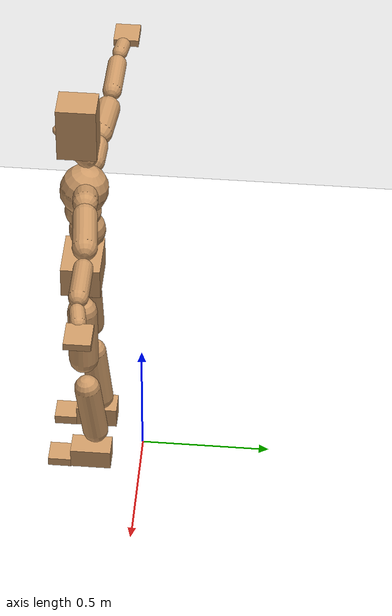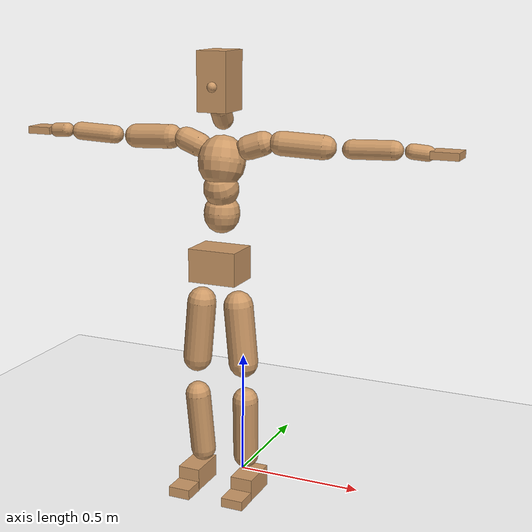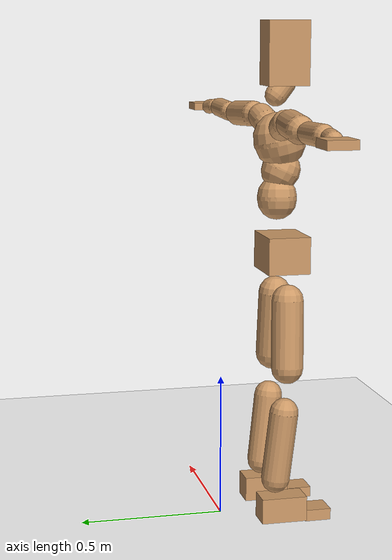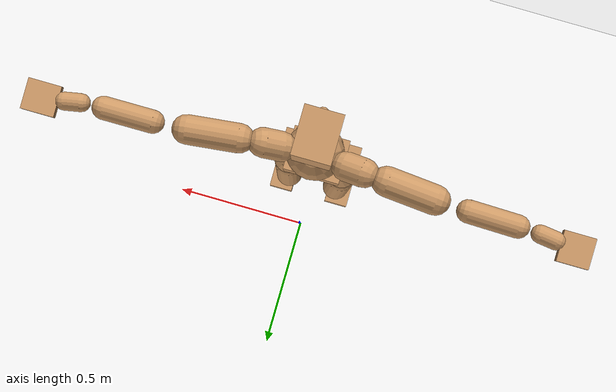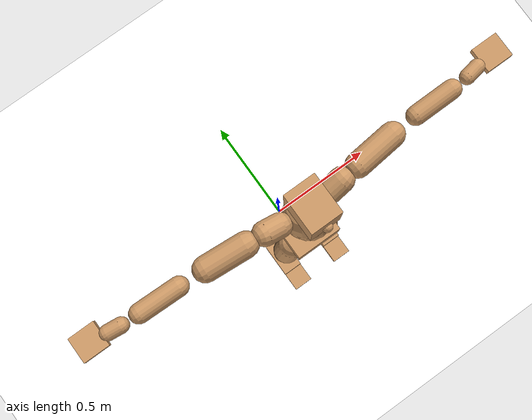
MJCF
<mujoco model="humanoid">
  <option integrator="implicitfast" />

  <visual>
    <global offwidth="1280" offheight="960" />
    <headlight active="1" ambient="0.34 0.34 0.34" diffuse="0.5 0.5 0.5" />
  </visual>

  <default>
    <joint damping="2" stiffness="2" armature="0.01" limited="true" solimplimit="0 .99 .01" />
    <geom condim="1" friction="0.7 0.005 0.0001" solimp=".99 .99 .003" solref="0.015 1" margin="0.001" rgba="0.8 0.6 .4 1" />
    <default class="smplcontact">
      <geom condim="3" friction="1. 0.005 0.0001" solref="0.015 1" solimp="0.98 0.98 0.001" priority="1" />
    </default>
    <default class="stiff_medium">
      <joint stiffness="10" />
    </default>
    <default class="stiff_medium_higher">
      <joint stiffness="50" />
    </default>
    <default class="stiff_high">
      <joint stiffness="100" />
    </default>
  </default>

  <asset>
    <texture type="skybox" builtin="gradient" rgb1="0.99 0.99 0.99" rgb2="0.608 0.828 0.892" width="100" />
    <texture builtin="flat" height="1278" mark="cross" markrgb="1 1 1" name="texgeom" random="0.01" rgb1="0.8 0.6 0.4" rgb2="0.8 0.6 0.4" type="cube" width="127" />
    <texture name="texplane" type="2d" builtin="checker" markrgb="1 1 1" rgb1="0.756 0.772 0.76" rgb2="0.6 0.6 0.6" width="100" height="100" />
    <material name="MatPlane" reflectance="0.5" texture="texplane" texrepeat="1 1" texuniform="true" />
    <material name="geom" texture="texgeom" texuniform="true" />
  </asset>

  <worldbody>
    <light name="tracking_light" pos="0 0 7" dir="0 0 -1" directional="true" cutoff="100" exponent="1" diffuse="1 1 1" specular="0.1 0.1 0.1" mode="trackcom" />
    <camera name="back" pos="0 3 2.4" xyaxes="-1 0 0 0 -1 2" mode="trackcom" />
    <camera name="side" pos="-3 0 2.4" xyaxes="0 -1 0 1 0 2" mode="trackcom" />
    <camera name="front_side" pos="-2.8 -2.8 0.8" xyaxes="0.5 -0.5 0 0.1 0.1 1" mode="trackcom" />
    <geom condim="3" name="floor" pos="0 0 0" rgba="1 1 1 1" size="100 100 .2" type="plane" material="MatPlane" />
    <body name="Pelvis" pos="-0.0018 -0.2233 0.949016" euler="90 0 0">
      <site name="Pelvis" size="0.01" />
      <freejoint name="Pelvis" />
      <geom type="box" pos="-0.0000 -0.0121 -0.0055" size="0.0952823 0.0643534 0.0739797" quat="1.0000 0.0000 0.0000 0.0000" density="3165.830099" name="Pelvis" />
      <body name="L_Hip" pos="0.0705565 -0.0927894 -0.00690337">
        <joint name="L_Hip_x" type="hinge" pos="0 0 0" axis="1 0 0" stiffness="10" range="-160.0 22.92" class="stiff_medium" damping="15" />
        <joint name="L_Hip_y" type="hinge" pos="0 0 0" axis="0 1 0" stiffness="10" range="-70.0 70.0" class="stiff_medium" damping="10" />
        <joint name="L_Hip_z" type="hinge" pos="0 0 0" axis="0 0 1" stiffness="10" range="-28.65 90.0" class="stiff_medium" damping="10" />
        <geom type="capsule" density="2040.816327" fromto="0.00700489 -0.0761401 -0.000913681 0.0278165 -0.304763 -0.00365472" size="0.0569593" name="L_Hip" />
        <body name="L_Knee" pos="0.0348214 -0.380904 -0.00456841">
          <joint name="L_Knee_x" type="hinge" pos="0 0 0" axis="1 0 0" range="-5.16 171.89" damping="8" />
          <joint name="L_Knee_y" type="hinge" pos="0 0 0" axis="0 1 0" range="-4.58 6.88" damping="8" />
          <joint name="L_Knee_z" type="hinge" pos="0 0 0" axis="0 0 1" range="-6.88 4.58" damping="8" />
          <geom type="capsule" density="1234.567901" fromto="-0.00274104 -0.08081 -0.00883225 -0.0110657 -0.32324 -0.035532" size="0.0501057" name="L_Knee" />
          <body name="L_Ankle" pos="-0.0138067 -0.40405 -0.0443643">
            <joint name="L_Ankle_x" type="hinge" pos="0 0 0" axis="1 0 0" range="-45.84 45.84" class="stiff_medium" damping="6" />
            <joint name="L_Ankle_y" type="hinge" pos="0 0 0" axis="0 1 0" range="-74.48 22.92" class="stiff_medium" damping="3" />
            <joint name="L_Ankle_z" type="hinge" pos="0 0 0" axis="0 0 1" range="-4.58 4.58" class="stiff_medium" damping="6" />
            <geom type="box" pos="0.0236542 -0.0242633 0.0245679" size="0.0447339 0.0429742 0.0787242" quat="1.0000 0.0000 0.0000 0.0000" density="449.071558" name="L_Ankle" class="smplcontact" />
            <body name="L_Toe" pos="0.0268013 -0.0566482 0.121114">
              <joint name="L_Toe_x" type="hinge" pos="0 0 0" axis="1 0 0" range="-91.67 22.92" />
              <joint name="L_Toe_y" type="hinge" pos="0 0 0" axis="0 1 0" range="-4.58 4.58" />
              <joint name="L_Toe_z" type="hinge" pos="0 0 0" axis="0 0 1" range="-4.58 4.58" />
              <geom type="box" pos="-0.0030456 0.00558361 0.025177" size="0.0442708 0.0185234 0.0459379" quat="1.0000 0.0000 0.0000 0.0000" density="423.206892" name="L_Toe" class="smplcontact" />
            </body>
          </body>
        </body>
      </body>
      <body name="R_Hip" pos="-0.0687291 -0.0918757 -0.00436537">
        <joint name="R_Hip_x" type="hinge" pos="0 0 0" axis="1 0 0" stiffness="10" range="-160.0 22.92" class="stiff_medium" damping="15" />
        <joint name="R_Hip_y" type="hinge" pos="0 0 0" axis="0 1 0" stiffness="10" range="-70.0 70.0" class="stiff_medium" damping="10" />
        <joint name="R_Hip_z" type="hinge" pos="0 0 0" axis="0 0 1" stiffness="10" range="-90.0 28.65" class="stiff_medium" damping="10" />
        <geom type="capsule" density="2040.816327" fromto="-0.00781705 -0.0776629 -0.00182736 -0.0310652 -0.310753 -0.00720793" size="0.0561258" name="R_Hip" />
        <body name="R_Knee" pos="-0.0388822 -0.388416 -0.00903529">
          <joint name="R_Knee_x" type="hinge" pos="0 0 0" axis="1 0 0" range="-5.16 171.89" damping="8" />
          <joint name="R_Knee_y" type="hinge" pos="0 0 0" axis="0 1 0" range="-6.88 4.58" damping="8" />
          <joint name="R_Knee_z" type="hinge" pos="0 0 0" axis="0 0 1" range="-4.58 6.88" damping="8" />
          <geom type="capsule" density="1234.567901" fromto="0.00324864 -0.0809115 -0.00862921 0.0127915 -0.323545 -0.0343138" size="0.0501057" name="R_Knee" />
          <body name="R_Ankle" pos="0.0160402 -0.404456 -0.042943">
            <joint name="R_Ankle_x" type="hinge" pos="0 0 0" axis="1 0 0" range="-45.84 45.84" class="stiff_medium" damping="6" />
            <joint name="R_Ankle_y" type="hinge" pos="0 0 0" axis="0 1 0" range="-22.92 74.48" class="stiff_medium" damping="3" />
            <joint name="R_Ankle_z" type="hinge" pos="0 0 0" axis="0 0 1" range="-4.58 4.58" class="stiff_medium" damping="6" />
            <geom type="box" pos="-0.0215223 -0.0176645 0.0259892" size="0.0447339 0.0442708 0.0801135" quat="1.0000 0.0000 0.0000 0.0000" density="434.700981" name="R_Ankle" class="smplcontact" />
            <body name="R_Toe" pos="-0.0257861 -0.0488312 0.125174">
              <joint name="R_Toe_x" type="hinge" pos="0 0 0" axis="1 0 0" range="-91.67 22.92" />
              <joint name="R_Toe_y" type="hinge" pos="0 0 0" axis="0 1 0" range="-4.58 4.58" />
              <joint name="R_Toe_z" type="hinge" pos="0 0 0" axis="0 0 1" range="-4.58 4.58" />
              <geom type="box" pos="0.00426385 0.00456841 0.0230451" size="0.0443634 0.0200052 0.0456601" quat="1.0000 0.0000 0.0000 0.0000" density="407.384095" name="R_Toe" class="smplcontact" />
            </body>
          </body>
        </body>
      </body>
      <body name="Torso" pos="-0.002538 0.110657 -0.0271059">
        <joint name="Torso_x" type="hinge" pos="0 0 0" axis="1 0 0" range="-25.78 57.3" class="stiff_medium" damping="15" />
        <joint name="Torso_y" type="hinge" pos="0 0 0" axis="0 1 0" range="-57.3 57.3" class="stiff_high" damping="20" />
        <joint name="Torso_z" type="hinge" pos="0 0 0" axis="0 0 1" range="-34.38 34.38" class="stiff_high" damping="20" />
        <geom type="capsule" density="2040.816327" fromto="0.002538 0.0617242 0.000507601 0.0030456 0.0754295 0.000609121" size="0.0685426" name="Torso" />
        <body name="Spine" pos="0.00558361 0.137255 0.00111672">
          <joint name="Spine_x" type="hinge" pos="0 0 0" axis="1 0 0" stiffness="10" range="-25.78 57.3" class="stiff_medium" damping="15" />
          <joint name="Spine_y" type="hinge" pos="0 0 0" axis="0 1 0" stiffness="10" range="-57.3 57.3" class="stiff_high" damping="8" />
          <joint name="Spine_z" type="hinge" pos="0 0 0" axis="0 0 1" stiffness="20" range="-34.38 34.38" class="stiff_high" damping="12" />
          <geom type="capsule" density="2040.816327" fromto="0.000710641 0.0241618 0.0115733 0.000812161 0.0295424 0.0142128" size="0.0672948" name="Spine" />
          <body name="Chest" pos="0.0015228 0.0537042 0.0257861">
            <joint name="Chest_x" type="hinge" pos="0 0 0" axis="1 0 0" stiffness="10" range="-25.78 57.3" class="stiff_medium" damping="15" />
            <joint name="Chest_y" type="hinge" pos="0 0 0" axis="0 1 0" stiffness="10" range="-57.3 57.3" class="stiff_high" damping="8" />
            <joint name="Chest_z" type="hinge" pos="0 0 0" axis="0 0 1" stiffness="20" range="-34.38 34.38" class="stiff_high" damping="12" />
            <geom type="capsule" density="2040.816327" fromto="-0.000913681 0.0692367 -0.017563 -0.0010152 0.0845663 -0.0215223" size="0.0893104" name="Chest" />
            <body name="Neck" pos="-0.00284256 0.217152 -0.0435521">
              <joint name="Neck_x" type="hinge" pos="0 0 0" axis="1 0 0" range="-28.65 57.3" class="stiff_medium_higher" damping="10" />
              <joint name="Neck_y" type="hinge" pos="0 0 0" axis="0 1 0" range="-40.11 40.11" class="stiff_medium_higher" damping="10" />
              <joint name="Neck_z" type="hinge" pos="0 0 0" axis="0 0 1" range="-40.11 40.11" class="stiff_medium_higher" damping="10" />
              <geom type="capsule" density="1000" fromto="0.0010152 0.0131976 0.0104566 0.00416233 0.0527905 0.0417248" size="0.0388616" name="Neck" />
              <body name="Head" pos="0.00527905 0.0659881 0.0520798">
                <joint name="Head_x" type="hinge" pos="0 0 0" axis="1 0 0" range="-28.65 57.3" class="stiff_medium_higher" damping="2" />
                <joint name="Head_y" type="hinge" pos="0 0 0" axis="0 1 0" range="-40.11 40.11" class="stiff_medium_higher" damping="2" />
                <joint name="Head_z" type="hinge" pos="0 0 0" axis="0 0 1" range="-40.11 40.11" class="stiff_medium_higher" damping="2" />
                <geom type="box" pos="-0.00426385 0.0889316 -0.0117763" size="0.0575792 0.109648 0.0722115" quat="1.0000 0.0000 0.0000 0.0000" density="1018.069894" name="Head" />
                <geom type="capsule" name="nose" size="0.019003 0.00950152" pos="0 0.0710641 0.0507601" quat="1 0 0 0" mass="0" contype="0" conaffinity="0" />
              </body>
            </body>
            <body name="L_Thorax" pos="0.0799979 0.12355 -0.0346184">
              <joint name="L_Thorax_x" type="hinge" pos="0 0 0" axis="1 0 0" range="-10.89 4.58" class="stiff_medium_higher" damping="20" />
              <joint name="L_Thorax_y" type="hinge" pos="0 0 0" axis="0 1 0" range="-28.65 17.19" class="stiff_medium_higher" damping="20" />
              <joint name="L_Thorax_z" type="hinge" pos="0 0 0" axis="0 0 1" range="-31.51 40.11" class="stiff_medium_higher" damping="20" />
              <geom type="capsule" density="1000" fromto="0.0184767 0.00619273 -0.00182736 0.0739067 0.0247709 -0.00720793" size="0.045848" name="L_Thorax" />
              <body name="L_Shoulder" pos="0.0923833 0.0309636 -0.00903529">
                <joint name="L_Shoulder_x" type="hinge" pos="0 0 0" axis="1 0 0" range="-97.4 97.4" class="stiff_medium" damping="6" />
                <joint name="L_Shoulder_y" type="hinge" pos="0 0 0" axis="0 1 0" range="-108.86 80.21" class="stiff_medium" damping="6" />
                <joint name="L_Shoulder_z" type="hinge" pos="0 0 0" axis="0 0 1" range="-97.4 85.94" class="stiff_medium" damping="6" />
                <geom type="capsule" density="1000" fromto="0.052689 -0.00263952 -0.00558361 0.210857 -0.0103551 -0.0223344" size="0.045496" name="L_Shoulder" />
                <body name="L_Elbow" pos="0.263546 -0.0129946 -0.027918">
                  <joint name="L_Elbow_x" type="hinge" pos="0 0 0" axis="1 0 0" range="-17.19 4.58" damping="5" />
                  <joint name="L_Elbow_y" type="hinge" pos="0 0 0" axis="0 1 0" range="-180.0 17.19" damping="5" />
                  <joint name="L_Elbow_z" type="hinge" pos="0 0 0" axis="0 0 1" range="-100.84 4.58" damping="5" />
                  <geom type="capsule" density="1000" fromto="0.050557 0.00182736 -0.00020304 0.202431 0.00730945 -0.000913681" size="0.03564" name="L_Elbow" />
                  <body name="L_Wrist" pos="0.252988 0.00913681 -0.00121824">
                    <joint name="L_Wrist_x" type="hinge" pos="0 0 0" axis="1 0 0" range="-180.0 22.92" />
                    <joint name="L_Wrist_y" type="hinge" pos="0 0 0" axis="0 1 0" range="-17.19 17.19" />
                    <joint name="L_Wrist_z" type="hinge" pos="0 0 0" axis="0 0 1" range="-22.92 22.92" />
                    <geom type="capsule" density="1000" fromto="0.0170554 -0.00162432 -0.0030456 0.0682215 -0.00659881 -0.0121824" size="0.027984" name="L_Wrist" class="smplcontact" />
                    <body name="L_Hand" pos="0.0852769 -0.00832465 -0.0151265">
                      <joint name="L_Hand_x" type="hinge" pos="0 0 0" axis="1 0 0" range="-17.19 17.19" />
                      <joint name="L_Hand_y" type="hinge" pos="0 0 0" axis="0 1 0" range="-51.57 51.57" />
                      <joint name="L_Hand_z" type="hinge" pos="0 0 0" axis="0 0 1" range="-91.67 91.67" />
                      <geom type="box" pos="0.0500494 0.0010152 -0.00588817" size="0.05148 0.013904 0.047344" quat="1.0000 0.0000 0.0000 0.0000" density="400.552564" name="L_Hand" class="smplcontact" />
                    </body>
                  </body>
                </body>
              </body>
            </body>
            <body name="R_Thorax" pos="-0.0830435 0.120606 -0.0391868">
              <joint name="R_Thorax_x" type="hinge" pos="0 0 0" axis="1 0 0" range="-10.89 4.58" class="stiff_medium_higher" damping="20" />
              <joint name="R_Thorax_y" type="hinge" pos="0 0 0" axis="0 1 0" range="-17.19 28.65" class="stiff_medium_higher" damping="20" />
              <joint name="R_Thorax_z" type="hinge" pos="0 0 0" axis="0 0 1" range="-40.11 31.51" class="stiff_medium_higher" damping="20" />
              <geom type="capsule" density="1000" fromto="-0.0194919 0.00659881 -0.00182736 -0.0779675 0.0263952 -0.00741097" size="0.044968" name="R_Thorax" />
              <body name="R_Shoulder" pos="-0.0974593 0.0330956 -0.00923833">
                <joint name="R_Shoulder_x" type="hinge" pos="0 0 0" axis="1 0 0" range="-97.4 97.4" class="stiff_medium" damping="6" />
                <joint name="R_Shoulder_y" type="hinge" pos="0 0 0" axis="0 1 0" range="-80.21 108.86" class="stiff_medium" damping="6" />
                <joint name="R_Shoulder_z" type="hinge" pos="0 0 0" axis="0 0 1" range="-85.94 97.4" class="stiff_medium" damping="6" />
                <geom type="capsule" density="1000" fromto="-0.0514707 -0.00274104 -0.00436537 -0.206086 -0.0108627 -0.0173599" size="0.046728" name="R_Shoulder" />
                <body name="R_Elbow" pos="-0.257557 -0.0135022 -0.0217253">
                  <joint name="R_Elbow_x" type="hinge" pos="0 0 0" axis="1 0 0" range="-17.19 4.58" damping="5" />
                  <joint name="R_Elbow_y" type="hinge" pos="0 0 0" axis="0 1 0" range="-17.19 180.0" damping="5" />
                  <joint name="R_Elbow_z" type="hinge" pos="0 0 0" axis="0 0 1" range="-4.58 100.84" damping="5" />
                  <geom type="capsule" density="1000" fromto="-0.0518768 0.00162432 -0.00111672 -0.207304 0.00629425 -0.00446689" size="0.035904" name="R_Elbow" />
                  <body name="R_Wrist" pos="-0.259181 0.00791857 -0.00568513">
                    <joint name="R_Wrist_x" type="hinge" pos="0 0 0" axis="1 0 0" range="-180.0 22.92" />
                    <joint name="R_Wrist_y" type="hinge" pos="0 0 0" axis="0 1 0" range="-17.19 17.19" />
                    <joint name="R_Wrist_z" type="hinge" pos="0 0 0" axis="0 0 1" range="-22.92 22.92" />
                    <geom type="capsule" density="1000" fromto="-0.0171569 -0.00121824 -0.00213192 -0.0687291 -0.00497449 -0.00842617" size="0.028688" name="R_Wrist" class="smplcontact" />
                    <body name="R_Hand" pos="-0.085886 -0.00619273 -0.0104566">
                      <joint name="R_Hand_x" type="hinge" pos="0 0 0" axis="1 0 0" range="-17.19 17.19" />
                      <joint name="R_Hand_y" type="hinge" pos="0 0 0" axis="0 1 0" range="-51.57 51.57" />
                      <joint name="R_Hand_z" type="hinge" pos="0 0 0" axis="0 0 1" range="-91.67 91.67" />
                      <geom type="box" pos="-0.0469023 -0.000913681 -0.00802009" size="0.050072 0.014432 0.048048" quat="1.0000 0.0000 0.0000 0.0000" density="403.679611" name="R_Hand" class="smplcontact" />
                    </body>
                  </body>
                </body>
              </body>
            </body>
          </body>
        </body>
      </body>
    </body>
  </worldbody>
  <actuator>
    <general name="L_Hip_x" joint="L_Hip_x" biastype="affine" gainprm="287.33006409732246" biasprm="-215.3247604770444 -180 -2.0" ctrllimited="true" ctrlrange="-1 1" forcerange="-360 360" />
    <general name="L_Hip_y" joint="L_Hip_y" biastype="affine" gainprm="219.9114857512855" biasprm="0.0 -180 -2.0" ctrllimited="true" ctrlrange="-1 1" forcerange="-360 360" />
    <general name="L_Hip_z" joint="L_Hip_z" biastype="affine" gainprm="186.3749841742145" biasprm="96.3683546488669 -180 -2.0" ctrllimited="true" ctrlrange="-1 1" forcerange="-360 360" />
    <general name="L_Knee_x" joint="L_Knee_x" biastype="affine" gainprm="278.10948965903646" biasprm="261.8988715665131 -180 -2.0" ctrllimited="true" ctrlrange="-1 1" forcerange="-360 360" />
    <general name="L_Knee_y" joint="L_Knee_y" biastype="affine" gainprm="18.001325905069514" biasprm="3.612831551628262 -180 -2.0" ctrllimited="true" ctrlrange="-1 1" forcerange="-360 360" />
    <general name="L_Knee_z" joint="L_Knee_z" biastype="affine" gainprm="18.001325905069514" biasprm="-3.612831551628262 -180 -2.0" ctrllimited="true" ctrlrange="-1 1" forcerange="-360 360" />
    <general name="L_Ankle_x" joint="L_Ankle_x" biastype="affine" gainprm="72.00530362027807" biasprm="0.0 -90 -2.0" ctrllimited="true" ctrlrange="-1 1" forcerange="-180 180" />
    <general name="L_Ankle_y" joint="L_Ankle_y" biastype="affine" gainprm="76.49778111491148" biasprm="-40.49512930477244 -90 -2.0" ctrllimited="true" ctrlrange="-1 1" forcerange="-180 180" />
    <general name="L_Ankle_z" joint="L_Ankle_z" biastype="affine" gainprm="7.1942471767206255" biasprm="0.0 -90 -2.0" ctrllimited="true" ctrlrange="-1 1" forcerange="-180 180" />
    <general name="L_Toe_x" joint="L_Toe_x" biastype="affine" gainprm="71.99902043497087" biasprm="-43.19689898685965 -72 -0.8" ctrllimited="true" ctrlrange="-1 1" forcerange="-144 144" />
    <general name="L_Toe_y" joint="L_Toe_y" biastype="affine" gainprm="5.755397741376501" biasprm="0.0 -72 -0.8" ctrllimited="true" ctrlrange="-1 1" forcerange="-144 144" />
    <general name="L_Toe_z" joint="L_Toe_z" biastype="affine" gainprm="5.755397741376501" biasprm="0.0 -72 -0.8" ctrllimited="true" ctrlrange="-1 1" forcerange="-144 144" />
    <general name="R_Hip_x" joint="R_Hip_x" biastype="affine" gainprm="287.33006409732246" biasprm="-215.3247604770444 -180 -2.0" ctrllimited="true" ctrlrange="-1 1" forcerange="-360 360" />
    <general name="R_Hip_y" joint="R_Hip_y" biastype="affine" gainprm="219.9114857512855" biasprm="0.0 -180 -2.0" ctrllimited="true" ctrlrange="-1 1" forcerange="-360 360" />
    <general name="R_Hip_z" joint="R_Hip_z" biastype="affine" gainprm="186.3749841742145" biasprm="-96.3683546488669 -180 -2.0" ctrllimited="true" ctrlrange="-1 1" forcerange="-360 360" />
    <general name="R_Knee_x" joint="R_Knee_x" biastype="affine" gainprm="278.10948965903646" biasprm="261.8988715665131 -180 -2.0" ctrllimited="true" ctrlrange="-1 1" forcerange="-360 360" />
    <general name="R_Knee_y" joint="R_Knee_y" biastype="affine" gainprm="18.001325905069514" biasprm="-3.612831551628262 -180 -2.0" ctrllimited="true" ctrlrange="-1 1" forcerange="-360 360" />
    <general name="R_Knee_z" joint="R_Knee_z" biastype="affine" gainprm="18.001325905069514" biasprm="3.612831551628262 -180 -2.0" ctrllimited="true" ctrlrange="-1 1" forcerange="-360 360" />
    <general name="R_Ankle_x" joint="R_Ankle_x" biastype="affine" gainprm="72.00530362027807" biasprm="0.0 -90 -2.0" ctrllimited="true" ctrlrange="-1 1" forcerange="-180 180" />
    <general name="R_Ankle_y" joint="R_Ankle_y" biastype="affine" gainprm="76.49778111491148" biasprm="40.49512930477244 -90 -2.0" ctrllimited="true" ctrlrange="-1 1" forcerange="-180 180" />
    <general name="R_Ankle_z" joint="R_Ankle_z" biastype="affine" gainprm="7.1942471767206255" biasprm="0.0 -90 -2.0" ctrllimited="true" ctrlrange="-1 1" forcerange="-180 180" />
    <general name="R_Toe_x" joint="R_Toe_x" biastype="affine" gainprm="71.99902043497087" biasprm="-43.19689898685965 -72 -0.8" ctrllimited="true" ctrlrange="-1 1" forcerange="-144 144" />
    <general name="R_Toe_y" joint="R_Toe_y" biastype="affine" gainprm="5.755397741376501" biasprm="0.0 -72 -0.8" ctrllimited="true" ctrlrange="-1 1" forcerange="-144 144" />
    <general name="R_Toe_z" joint="R_Toe_z" biastype="affine" gainprm="5.755397741376501" biasprm="0.0 -72 -0.8" ctrllimited="true" ctrlrange="-1 1" forcerange="-144 144" />
    <general name="Torso_x" joint="Torso_x" biastype="affine" gainprm="174.00234510682668" biasprm="66.0153336274335 -240 -4.0" ctrllimited="true" ctrlrange="-1 1" forcerange="-360 360" />
    <general name="Torso_y" joint="Torso_y" biastype="affine" gainprm="240.0176787342602" biasprm="0.0 -240 -4.0" ctrllimited="true" ctrlrange="-1 1" forcerange="-360 360" />
    <general name="Torso_z" joint="Torso_z" biastype="affine" gainprm="144.01060724055614" biasprm="0.0 -240 -4.0" ctrllimited="true" ctrlrange="-1 1" forcerange="-360 360" />
    <general name="Spine_x" joint="Spine_x" biastype="affine" gainprm="174.00234510682668" biasprm="66.0153336274335 -240 -4.0" ctrllimited="true" ctrlrange="-1 1" forcerange="-360 360" />
    <general name="Spine_y" joint="Spine_y" biastype="affine" gainprm="240.0176787342602" biasprm="0.0 -240 -4.0" ctrllimited="true" ctrlrange="-1 1" forcerange="-360 360" />
    <general name="Spine_z" joint="Spine_z" biastype="affine" gainprm="144.01060724055614" biasprm="0.0 -240 -4.0" ctrllimited="true" ctrlrange="-1 1" forcerange="-360 360" />
    <general name="Chest_x" joint="Chest_x" biastype="affine" gainprm="174.00234510682668" biasprm="66.0153336274335 -240 -4.0" ctrllimited="true" ctrlrange="-1 1" forcerange="-360 360" />
    <general name="Chest_y" joint="Chest_y" biastype="affine" gainprm="240.0176787342602" biasprm="0.0 -240 -4.0" ctrllimited="true" ctrlrange="-1 1" forcerange="-360 360" />
    <general name="Chest_z" joint="Chest_z" biastype="affine" gainprm="144.01060724055614" biasprm="0.0 -240 -4.0" ctrllimited="true" ctrlrange="-1 1" forcerange="-360 360" />
    <general name="Neck_x" joint="Neck_x" biastype="affine" gainprm="27.00198885760427" biasprm="9.000662952534757 -36 -0.8" ctrllimited="true" ctrlrange="-1 1" forcerange="-72 72" />
    <general name="Neck_y" joint="Neck_y" biastype="affine" gainprm="25.20185626709732" biasprm="0.0 -36 -0.8" ctrllimited="true" ctrlrange="-1 1" forcerange="-72 72" />
    <general name="Neck_z" joint="Neck_z" biastype="affine" gainprm="25.20185626709732" biasprm="0.0 -36 -0.8" ctrllimited="true" ctrlrange="-1 1" forcerange="-72 72" />
    <general name="Head_x" joint="Head_x" biastype="affine" gainprm="18.001325905069514" biasprm="6.000441968356505 -24 -0.8" ctrllimited="true" ctrlrange="-1 1" forcerange="-48 48" />
    <general name="Head_y" joint="Head_y" biastype="affine" gainprm="16.801237511398213" biasprm="0.0 -24 -0.8" ctrllimited="true" ctrlrange="-1 1" forcerange="-48 48" />
    <general name="Head_z" joint="Head_z" biastype="affine" gainprm="16.801237511398213" biasprm="0.0 -24 -0.8" ctrllimited="true" ctrlrange="-1 1" forcerange="-48 48" />
    <general name="L_Thorax_x" joint="L_Thorax_x" biastype="affine" gainprm="16.200146117011364" biasprm="-6.6078165480505335 -120 -1.6" ctrllimited="true" ctrlrange="-1 1" forcerange="-240 240" />
    <general name="L_Thorax_y" joint="L_Thorax_y" biastype="affine" gainprm="48.00353574685204" biasprm="-12.00088393671301 -120 -1.6" ctrllimited="true" ctrlrange="-1 1" forcerange="-240 240" />
    <general name="L_Thorax_z" joint="L_Thorax_z" biastype="affine" gainprm="75.00028861670033" biasprm="9.00589894029074 -120 -1.6" ctrllimited="true" ctrlrange="-1 1" forcerange="-240 240" />
    <general name="L_Shoulder_x" joint="L_Shoulder_x" biastype="affine" gainprm="81.5976331892389" biasprm="0.0 -48 -1.6" ctrllimited="true" ctrlrange="-1 1" forcerange="-96 96" />
    <general name="L_Shoulder_y" joint="L_Shoulder_y" biastype="affine" gainprm="79.19745640189629" biasprm="-12.00088393671301 -48 -1.6" ctrllimited="true" ctrlrange="-1 1" forcerange="-96 96" />
    <general name="L_Shoulder_z" joint="L_Shoulder_z" biastype="affine" gainprm="76.79727961455369" biasprm="-4.800353574685214 -48 -1.6" ctrllimited="true" ctrlrange="-1 1" forcerange="-96 96" />
    <general name="L_Elbow_x" joint="L_Elbow_x" biastype="affine" gainprm="13.67849441372996" biasprm="-7.923096672353461 -72 -0.8" ctrllimited="true" ctrlrange="-1 1" forcerange="-144 144" />
    <general name="L_Elbow_y" joint="L_Elbow_y" biastype="affine" gainprm="123.89813107227425" biasprm="-102.29653998619085 -72 -0.8" ctrllimited="true" ctrlrange="-1 1" forcerange="-144 144" />
    <general name="L_Elbow_z" joint="L_Elbow_z" biastype="affine" gainprm="66.23733950828719" biasprm="-60.4819417669107 -72 -0.8" ctrllimited="true" ctrlrange="-1 1" forcerange="-144 144" />
    <general name="L_Wrist_x" joint="L_Wrist_x" biastype="affine" gainprm="21.24973270888136" biasprm="-16.449379134196157 -12 -0.8" ctrllimited="true" ctrlrange="-1 1" forcerange="-24 24" />
    <general name="L_Wrist_y" joint="L_Wrist_y" biastype="affine" gainprm="3.6002651810139037" biasprm="0.0 -12 -0.8" ctrllimited="true" ctrlrange="-1 1" forcerange="-24 24" />
    <general name="L_Wrist_z" joint="L_Wrist_z" biastype="affine" gainprm="4.800353574685205" biasprm="0.0 -12 -0.8" ctrllimited="true" ctrlrange="-1 1" forcerange="-24 24" />
    <general name="L_Hand_x" joint="L_Hand_x" biastype="affine" gainprm="3.6002651810139037" biasprm="0.0 -12 -0.8" ctrllimited="true" ctrlrange="-1 1" forcerange="-24 24" />
    <general name="L_Hand_y" joint="L_Hand_y" biastype="affine" gainprm="10.800795543041708" biasprm="0.0 -12 -0.8" ctrllimited="true" ctrlrange="-1 1" forcerange="-24 24" />
    <general name="L_Hand_z" joint="L_Hand_z" biastype="affine" gainprm="19.199319903638422" biasprm="0.0 -12 -0.8" ctrllimited="true" ctrlrange="-1 1" forcerange="-24 24" />
    <general name="R_Thorax_x" joint="R_Thorax_x" biastype="affine" gainprm="16.200146117011364" biasprm="-6.6078165480505335 -120 -1.6" ctrllimited="true" ctrlrange="-1 1" forcerange="-240 240" />
    <general name="R_Thorax_y" joint="R_Thorax_y" biastype="affine" gainprm="48.00353574685204" biasprm="12.000883936713002 -120 -1.6" ctrllimited="true" ctrlrange="-1 1" forcerange="-240 240" />
    <general name="R_Thorax_z" joint="R_Thorax_z" biastype="affine" gainprm="75.00028861670033" biasprm="-9.00589894029074 -120 -1.6" ctrllimited="true" ctrlrange="-1 1" forcerange="-240 240" />
    <general name="R_Shoulder_x" joint="R_Shoulder_x" biastype="affine" gainprm="81.5976331892389" biasprm="0.0 -48 -1.6" ctrllimited="true" ctrlrange="-1 1" forcerange="-96 96" />
    <general name="R_Shoulder_y" joint="R_Shoulder_y" biastype="affine" gainprm="79.19745640189629" biasprm="12.00088393671301 -48 -1.6" ctrllimited="true" ctrlrange="-1 1" forcerange="-96 96" />
    <general name="R_Shoulder_z" joint="R_Shoulder_z" biastype="affine" gainprm="76.79727961455369" biasprm="4.800353574685204 -48 -1.6" ctrllimited="true" ctrlrange="-1 1" forcerange="-96 96" />
    <general name="R_Elbow_x" joint="R_Elbow_x" biastype="affine" gainprm="13.67849441372996" biasprm="-7.923096672353461 -72 -0.8" ctrllimited="true" ctrlrange="-1 1" forcerange="-144 144" />
    <general name="R_Elbow_y" joint="R_Elbow_y" biastype="affine" gainprm="123.89813107227425" biasprm="102.29653998619085 -72 -0.8" ctrllimited="true" ctrlrange="-1 1" forcerange="-144 144" />
    <general name="R_Elbow_z" joint="R_Elbow_z" biastype="affine" gainprm="66.23733950828719" biasprm="60.481941766910694 -72 -0.8" ctrllimited="true" ctrlrange="-1 1" forcerange="-144 144" />
    <general name="R_Wrist_x" joint="R_Wrist_x" biastype="affine" gainprm="21.24973270888136" biasprm="-16.449379134196157 -12 -0.8" ctrllimited="true" ctrlrange="-1 1" forcerange="-24 24" />
    <general name="R_Wrist_y" joint="R_Wrist_y" biastype="affine" gainprm="3.6002651810139037" biasprm="0.0 -12 -0.8" ctrllimited="true" ctrlrange="-1 1" forcerange="-24 24" />
    <general name="R_Wrist_z" joint="R_Wrist_z" biastype="affine" gainprm="4.800353574685205" biasprm="0.0 -12 -0.8" ctrllimited="true" ctrlrange="-1 1" forcerange="-24 24" />
    <general name="R_Hand_x" joint="R_Hand_x" biastype="affine" gainprm="3.6002651810139037" biasprm="0.0 -12 -0.8" ctrllimited="true" ctrlrange="-1 1" forcerange="-24 24" />
    <general name="R_Hand_y" joint="R_Hand_y" biastype="affine" gainprm="10.800795543041708" biasprm="0.0 -12 -0.8" ctrllimited="true" ctrlrange="-1 1" forcerange="-24 24" />
    <general name="R_Hand_z" joint="R_Hand_z" biastype="affine" gainprm="19.199319903638422" biasprm="0.0 -12 -0.8" ctrllimited="true" ctrlrange="-1 1" forcerange="-24 24" />
  </actuator>
  <contact>
    <exclude body1="Torso" body2="Chest" />
    <exclude body1="Head" body2="Chest" />
    <exclude body1="R_Knee" body2="R_Toe" />
    <exclude body1="R_Knee" body2="L_Ankle" />
    <exclude body1="R_Knee" body2="L_Toe" />
    <exclude body1="L_Knee" body2="L_Toe" />
    <exclude body1="L_Knee" body2="R_Ankle" />
    <exclude body1="L_Knee" body2="R_Toe" />
    <exclude body1="L_Shoulder" body2="Chest" />
    <exclude body1="R_Shoulder" body2="Chest" />
  </contact>
  <sensor>
    <framelinvel name="sensor_Pelvis_framelinvel" objtype="xbody" objname="Pelvis" />
    <framelinvel name="sensor_L_Hip_framelinvel" objtype="xbody" objname="L_Hip" />
    <framelinvel name="sensor_L_Knee_framelinvel" objtype="xbody" objname="L_Knee" />
    <framelinvel name="sensor_L_Ankle_framelinvel" objtype="xbody" objname="L_Ankle" />
    <framelinvel name="sensor_L_Toe_framelinvel" objtype="xbody" objname="L_Toe" />
    <framelinvel name="sensor_R_Hip_framelinvel" objtype="xbody" objname="R_Hip" />
    <framelinvel name="sensor_R_Knee_framelinvel" objtype="xbody" objname="R_Knee" />
    <framelinvel name="sensor_R_Ankle_framelinvel" objtype="xbody" objname="R_Ankle" />
    <framelinvel name="sensor_R_Toe_framelinvel" objtype="xbody" objname="R_Toe" />
    <framelinvel name="sensor_Torso_framelinvel" objtype="xbody" objname="Torso" />
    <framelinvel name="sensor_Spine_framelinvel" objtype="xbody" objname="Spine" />
    <framelinvel name="sensor_Chest_framelinvel" objtype="xbody" objname="Chest" />
    <framelinvel name="sensor_Neck_framelinvel" objtype="xbody" objname="Neck" />
    <framelinvel name="sensor_Head_framelinvel" objtype="xbody" objname="Head" />
    <framelinvel name="sensor_L_Thorax_framelinvel" objtype="xbody" objname="L_Thorax" />
    <framelinvel name="sensor_L_Shoulder_framelinvel" objtype="xbody" objname="L_Shoulder" />
    <framelinvel name="sensor_L_Elbow_framelinvel" objtype="xbody" objname="L_Elbow" />
    <framelinvel name="sensor_L_Wrist_framelinvel" objtype="xbody" objname="L_Wrist" />
    <framelinvel name="sensor_L_Hand_framelinvel" objtype="xbody" objname="L_Hand" />
    <framelinvel name="sensor_R_Thorax_framelinvel" objtype="xbody" objname="R_Thorax" />
    <framelinvel name="sensor_R_Shoulder_framelinvel" objtype="xbody" objname="R_Shoulder" />
    <framelinvel name="sensor_R_Elbow_framelinvel" objtype="xbody" objname="R_Elbow" />
    <framelinvel name="sensor_R_Wrist_framelinvel" objtype="xbody" objname="R_Wrist" />
    <framelinvel name="sensor_R_Hand_framelinvel" objtype="xbody" objname="R_Hand" />
    <frameangvel name="sensor_Pelvis_frameangvel" objtype="xbody" objname="Pelvis" />
    <frameangvel name="sensor_L_Hip_frameangvel" objtype="xbody" objname="L_Hip" />
    <frameangvel name="sensor_L_Knee_frameangvel" objtype="xbody" objname="L_Knee" />
    <frameangvel name="sensor_L_Ankle_frameangvel" objtype="xbody" objname="L_Ankle" />
    <frameangvel name="sensor_L_Toe_frameangvel" objtype="xbody" objname="L_Toe" />
    <frameangvel name="sensor_R_Hip_frameangvel" objtype="xbody" objname="R_Hip" />
    <frameangvel name="sensor_R_Knee_frameangvel" objtype="xbody" objname="R_Knee" />
    <frameangvel name="sensor_R_Ankle_frameangvel" objtype="xbody" objname="R_Ankle" />
    <frameangvel name="sensor_R_Toe_frameangvel" objtype="xbody" objname="R_Toe" />
    <frameangvel name="sensor_Torso_frameangvel" objtype="xbody" objname="Torso" />
    <frameangvel name="sensor_Spine_frameangvel" objtype="xbody" objname="Spine" />
    <frameangvel name="sensor_Chest_frameangvel" objtype="xbody" objname="Chest" />
    <frameangvel name="sensor_Neck_frameangvel" objtype="xbody" objname="Neck" />
    <frameangvel name="sensor_Head_frameangvel" objtype="xbody" objname="Head" />
    <frameangvel name="sensor_L_Thorax_frameangvel" objtype="xbody" objname="L_Thorax" />
    <frameangvel name="sensor_L_Shoulder_frameangvel" objtype="xbody" objname="L_Shoulder" />
    <frameangvel name="sensor_L_Elbow_frameangvel" objtype="xbody" objname="L_Elbow" />
    <frameangvel name="sensor_L_Wrist_frameangvel" objtype="xbody" objname="L_Wrist" />
    <frameangvel name="sensor_L_Hand_frameangvel" objtype="xbody" objname="L_Hand" />
    <frameangvel name="sensor_R_Thorax_frameangvel" objtype="xbody" objname="R_Thorax" />
    <frameangvel name="sensor_R_Shoulder_frameangvel" objtype="xbody" objname="R_Shoulder" />
    <frameangvel name="sensor_R_Elbow_frameangvel" objtype="xbody" objname="R_Elbow" />
    <frameangvel name="sensor_R_Wrist_frameangvel" objtype="xbody" objname="R_Wrist" />
    <frameangvel name="sensor_R_Hand_frameangvel" objtype="xbody" objname="R_Hand" />
    <subtreelinvel name="Chest_subtreelinvel" body="Chest" />
    <gyro name="Pelvis_gyro" site="Pelvis" />
  </sensor>
</mujoco>
